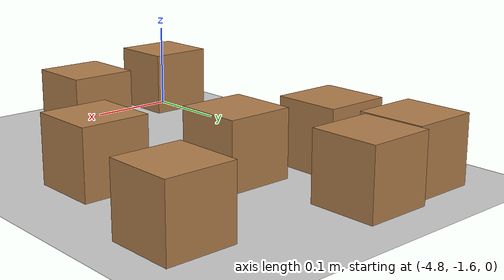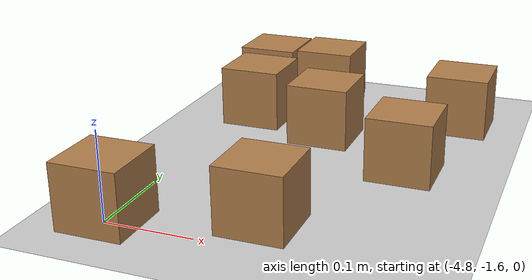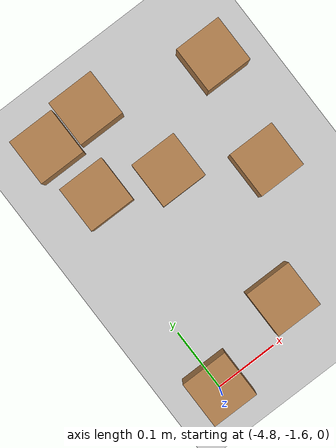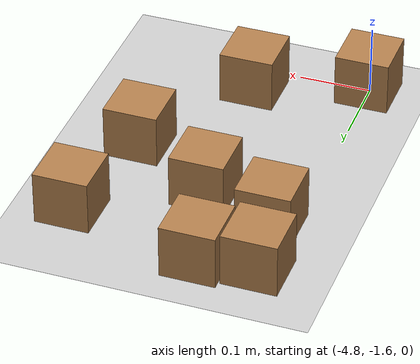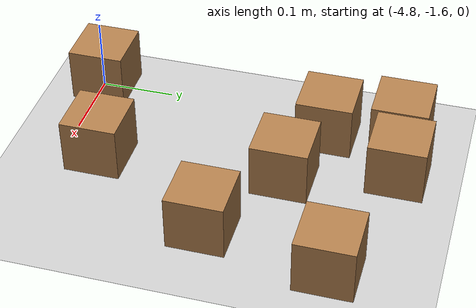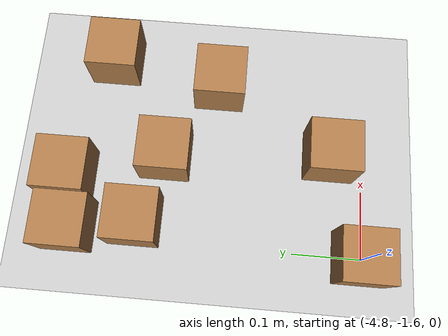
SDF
<sdf version="1.6">
 <world name="default">
  <model name="ground_plane">
   <static>1</static>
   <link name="link">
    <collision name="collision">
     <geometry><plane><normal>0 0 1</normal><size>100 100</size></plane></geometry>
     <surface><friction><ode><mu>100</mu><mu2>50</mu2></ode></friction></surface>
    </collision>
    <visual name="visual">
     <cast_shadows>0</cast_shadows>
     <geometry><plane><normal>0 0 1</normal><size>100 100</size></plane></geometry>
     <material>
      <script><uri>file://media/materials/scripts/gazebo.material</uri><name>Gazebo/Grey</name></script>
     </material>
    </visual>
   </link>
  </model>
  <model name="wood_cube_7_5cm_clone_0">
   <link name="link">
    <pose>0 0 0.0375 0 -0 0</pose>
    <inertial>
     <mass>0.2249</mass>
     <inertia>
      <ixx>0.000210844</ixx>
      <ixy>0</ixy>
      <ixz>0</ixz>
      <iyy>0.000210844</iyy>
      <iyz>0</iyz>
      <izz>0.000210844</izz>
     </inertia>
    </inertial>
    <collision name="collision">
     <geometry><box><size>0.075 0.075 0.075</size></box></geometry>
     <surface>
      <contact>
       <poissons_ratio>0.347</poissons_ratio>
       <elastic_modulus>8.8e+09</elastic_modulus>
       <ode><kp>100000</kp><kd>100</kd><max_vel>100</max_vel><min_depth>0.001</min_depth></ode>
      </contact>
      <friction>
       <torsional>
        <coefficient>1</coefficient>
        <use_patch_radius>0</use_patch_radius>
        <surface_radius>0.01</surface_radius>
       </torsional>
      </friction>
     </surface>
    </collision>
    <visual name="visual">
     <geometry><box><size>0.075 0.075 0.075</size></box></geometry>
     <material>
      <script><uri>file://media/materials/scripts/gazebo.material</uri><name>Gazebo/Wood</name></script>
     </material>
    </visual>
   </link>
   <pose>-4.54749 -1.37644 -0.001005 0 -0 0</pose>
  </model>
  <model name="wood_cube_7_5cm_clone_2">
   <link name="link">
    <pose>0 0 0.0375 0 -0 0</pose>
    <inertial>
     <mass>0.2249</mass>
     <inertia>
      <ixx>0.000210844</ixx>
      <ixy>0</ixy>
      <ixz>0</ixz>
      <iyy>0.000210844</iyy>
      <iyz>0</iyz>
      <izz>0.000210844</izz>
     </inertia>
    </inertial>
    <collision name="collision">
     <geometry><box><size>0.075 0.075 0.075</size></box></geometry>
     <surface>
      <contact>
       <poissons_ratio>0.347</poissons_ratio>
       <elastic_modulus>8.8e+09</elastic_modulus>
       <ode><kp>100000</kp><kd>100</kd><max_vel>100</max_vel><min_depth>0.001</min_depth></ode>
      </contact>
      <friction>
       <torsional>
        <coefficient>1</coefficient>
        <use_patch_radius>0</use_patch_radius>
        <surface_radius>0.01</surface_radius>
       </torsional>
      </friction>
     </surface>
    </collision>
    <visual name="visual">
     <geometry><box><size>0.075 0.075 0.075</size></box></geometry>
     <material>
      <script><uri>file://media/materials/scripts/gazebo.material</uri><name>Gazebo/Wood</name></script>
     </material>
    </visual>
   </link>
   <pose>-4.76924 -1.26859 -0.001005 0 -0 0</pose>
  </model>
  <model name="wood_cube_7_5cm_clone_5">
   <link name="link">
    <pose>0 0 0.0375 0 -0 0</pose>
    <inertial>
     <mass>0.2249</mass>
     <inertia>
      <ixx>0.000210844</ixx>
      <ixy>0</ixy>
      <ixz>0</ixz>
      <iyy>0.000210844</iyy>
      <iyz>0</iyz>
      <izz>0.000210844</izz>
     </inertia>
    </inertial>
    <collision name="collision">
     <geometry><box><size>0.075 0.075 0.075</size></box></geometry>
     <surface>
      <contact>
       <poissons_ratio>0.347</poissons_ratio>
       <elastic_modulus>8.8e+09</elastic_modulus>
       <ode><kp>100000</kp><kd>100</kd><max_vel>100</max_vel><min_depth>0.001</min_depth></ode>
      </contact>
      <friction>
       <torsional>
        <coefficient>1</coefficient>
        <use_patch_radius>0</use_patch_radius>
        <surface_radius>0.01</surface_radius>
       </torsional>
      </friction>
     </surface>
    </collision>
    <visual name="visual">
     <geometry><box><size>0.075 0.075 0.075</size></box></geometry>
     <material>
      <script><uri>file://media/materials/scripts/gazebo.material</uri><name>Gazebo/Wood</name></script>
     </material>
    </visual>
   </link>
   <pose>-4.78458 -1.17206 -0.001005 0 -0 5e-05</pose>
  </model>
  <model name="wood_cube_7_5cm_clone_6">
   <link name="link">
    <pose>0 0 0.0375 0 -0 0</pose>
    <inertial>
     <mass>0.2249</mass>
     <inertia>
      <ixx>0.000210844</ixx>
      <ixy>0</ixy>
      <ixz>0</ixz>
      <iyy>0.000210844</iyy>
      <iyz>0</iyz>
      <izz>0.000210844</izz>
     </inertia>
    </inertial>
    <collision name="collision">
     <geometry><box><size>0.075 0.075 0.075</size></box></geometry>
     <surface>
      <contact>
       <poissons_ratio>0.347</poissons_ratio>
       <elastic_modulus>8.8e+09</elastic_modulus>
       <ode><kp>100000</kp><kd>100</kd><max_vel>100</max_vel><min_depth>0.001</min_depth></ode>
      </contact>
      <friction>
       <torsional>
        <coefficient>1</coefficient>
        <use_patch_radius>0</use_patch_radius>
        <surface_radius>0.01</surface_radius>
       </torsional>
      </friction>
     </surface>
    </collision>
    <visual name="visual">
     <geometry><box><size>0.075 0.075 0.075</size></box></geometry>
     <material>
      <script><uri>file://media/materials/scripts/gazebo.material</uri><name>Gazebo/Wood</name></script>
     </material>
    </visual>
   </link>
   <pose>-4.66696 -1.30348 -0.001005 0 -0 0</pose>
  </model>
  <model name="wood_cube_7_5cm_clone_10">
   <link name="link">
    <pose>0 0 0.0375 0 -0 0</pose>
    <inertial>
     <mass>0.2249</mass>
     <inertia>
      <ixx>0.000210844</ixx>
      <ixy>0</ixy>
      <ixz>0</ixz>
      <iyy>0.000210844</iyy>
      <iyz>0</iyz>
      <izz>0.000210844</izz>
     </inertia>
    </inertial>
    <collision name="collision">
     <geometry><box><size>0.075 0.075 0.075</size></box></geometry>
     <surface>
      <contact>
       <poissons_ratio>0.347</poissons_ratio>
       <elastic_modulus>8.8e+09</elastic_modulus>
       <ode><kp>100000</kp><kd>100</kd><max_vel>100</max_vel><min_depth>0.001</min_depth></ode>
      </contact>
      <friction>
       <torsional>
        <coefficient>1</coefficient>
        <use_patch_radius>0</use_patch_radius>
        <surface_radius>0.01</surface_radius>
       </torsional>
      </friction>
     </surface>
    </collision>
    <visual name="visual">
     <geometry><box><size>0.075 0.075 0.075</size></box></geometry>
     <material>
      <script><uri>file://media/materials/scripts/gazebo.material</uri><name>Gazebo/Wood</name></script>
     </material>
    </visual>
   </link>
   <pose>-4.64924 -1.54846 -0.001005 0 -0 0</pose>
  </model>
  <model name="wood_cube_7_5cm_clone_7_clone">
   <link name="link">
    <pose>0 0 0.0375 0 -0 0</pose>
    <inertial>
     <mass>0.2249</mass>
     <inertia>
      <ixx>0.000210844</ixx>
      <ixy>0</ixy>
      <ixz>0</ixz>
      <iyy>0.000210844</iyy>
      <iyz>0</iyz>
      <izz>0.000210844</izz>
     </inertia>
    </inertial>
    <collision name="collision">
     <geometry><box><size>0.075 0.075 0.075</size></box></geometry>
     <surface>
      <contact>
       <poissons_ratio>0.347</poissons_ratio>
       <elastic_modulus>8.8e+09</elastic_modulus>
       <ode><kp>100000</kp><kd>100</kd><max_vel>100</max_vel><min_depth>0.001</min_depth></ode>
      </contact>
      <friction>
       <torsional>
        <coefficient>1</coefficient>
        <use_patch_radius>0</use_patch_radius>
        <surface_radius>0.01</surface_radius>
       </torsional>
      </friction>
     </surface>
    </collision>
    <visual name="visual">
     <geometry><box><size>0.075 0.075 0.075</size></box></geometry>
     <material>
      <script><uri>file://media/materials/scripts/gazebo.material</uri><name>Gazebo/Wood</name></script>
     </material>
    </visual>
   </link>
   <pose>-4.74428 -1.1622 0.036495 3.141 1.57079 3.14159</pose>
  </model>
  <model name="wood_cube_7_5cm_clone_7_clone_7">
   <link name="link">
    <pose>0 0 0.0375 0 -0 0</pose>
    <inertial>
     <mass>0.2249</mass>
     <inertia>
      <ixx>0.000210844</ixx>
      <ixy>0</ixy>
      <ixz>0</ixz>
      <iyy>0.000210844</iyy>
      <iyz>0</iyz>
      <izz>0.000210844</izz>
     </inertia>
    </inertial>
    <collision name="collision">
     <geometry><box><size>0.075 0.075 0.075</size></box></geometry>
     <surface>
      <contact>
       <poissons_ratio>0.347</poissons_ratio>
       <elastic_modulus>8.8e+09</elastic_modulus>
       <ode><kp>100000</kp><kd>100</kd><max_vel>100</max_vel><min_depth>0.001</min_depth></ode>
      </contact>
      <friction>
       <torsional>
        <coefficient>1</coefficient>
        <use_patch_radius>0</use_patch_radius>
        <surface_radius>0.01</surface_radius>
       </torsional>
      </friction>
     </surface>
    </collision>
    <visual name="visual">
     <geometry><box><size>0.075 0.075 0.075</size></box></geometry>
     <material>
      <script><uri>file://media/materials/scripts/gazebo.material</uri><name>Gazebo/Wood</name></script>
     </material>
    </visual>
   </link>
   <pose>-4.51659 -1.2118 -0.001005 0 -0 0</pose>
  </model>
  <model name="wood_cube_7_5cm_clone_7_clone_11">
   <link name="link">
    <pose>0 0 0.0375 0 -0 0</pose>
    <inertial>
     <mass>0.2249</mass>
     <inertia>
      <ixx>0.000210844</ixx>
      <ixy>0</ixy>
      <ixz>0</ixz>
      <iyy>0.000210844</iyy>
      <iyz>0</iyz>
      <izz>0.000210844</izz>
     </inertia>
    </inertial>
    <collision name="collision">
     <geometry><box><size>0.075 0.075 0.075</size></box></geometry>
     <surface>
      <contact>
       <poissons_ratio>0.347</poissons_ratio>
       <elastic_modulus>8.8e+09</elastic_modulus>
       <ode><kp>100000</kp><kd>100</kd><max_vel>100</max_vel><min_depth>0.001</min_depth></ode>
      </contact>
      <friction>
       <torsional>
        <coefficient>1</coefficient>
        <use_patch_radius>0</use_patch_radius>
        <surface_radius>0.01</surface_radius>
       </torsional>
      </friction>
     </surface>
    </collision>
    <visual name="visual">
     <geometry><box><size>0.075 0.075 0.075</size></box></geometry>
     <material>
      <script><uri>file://media/materials/scripts/gazebo.material</uri><name>Gazebo/Wood</name></script>
     </material>
    </visual>
   </link>
   <pose>-4.79889 -1.59487 -0.001005 0 -0 0</pose>
  </model>
 </world>
</sdf>
